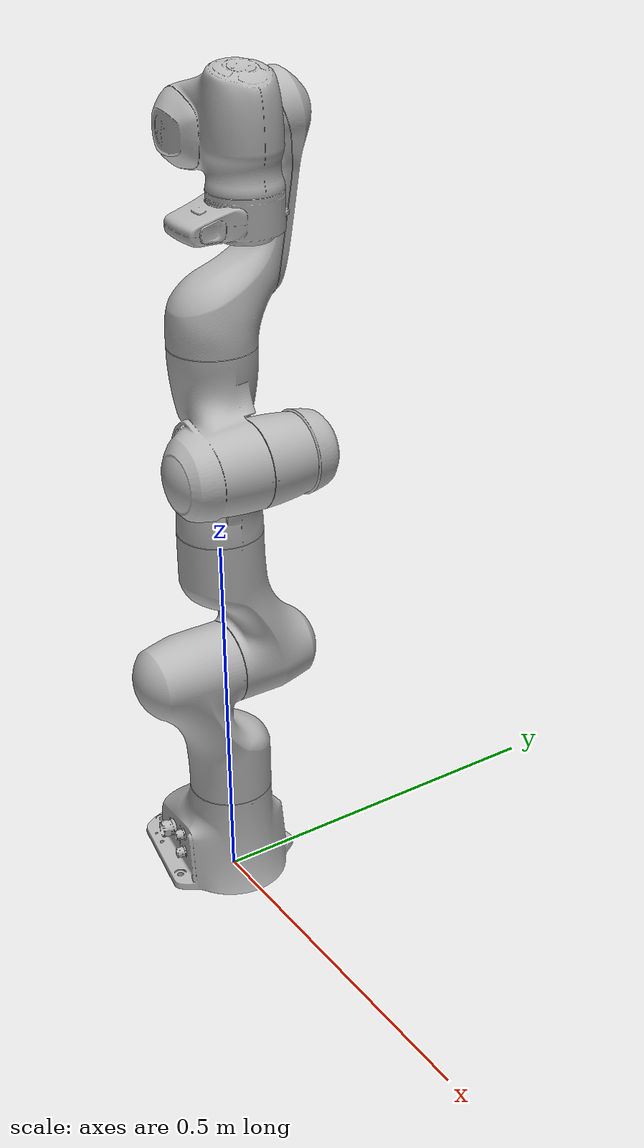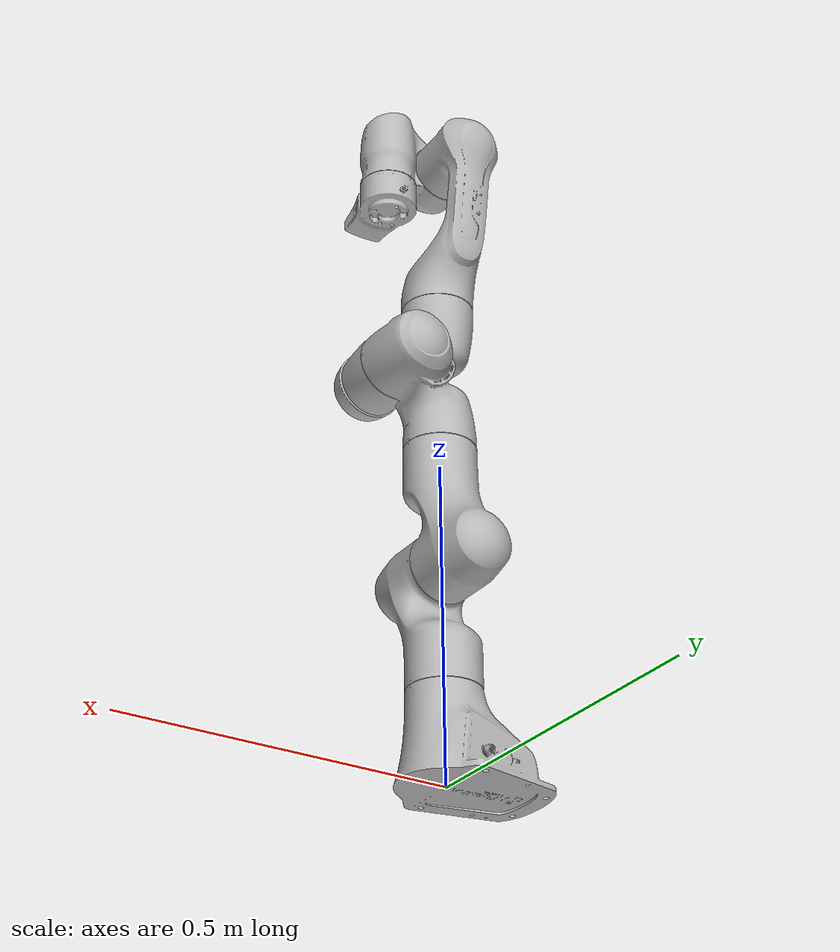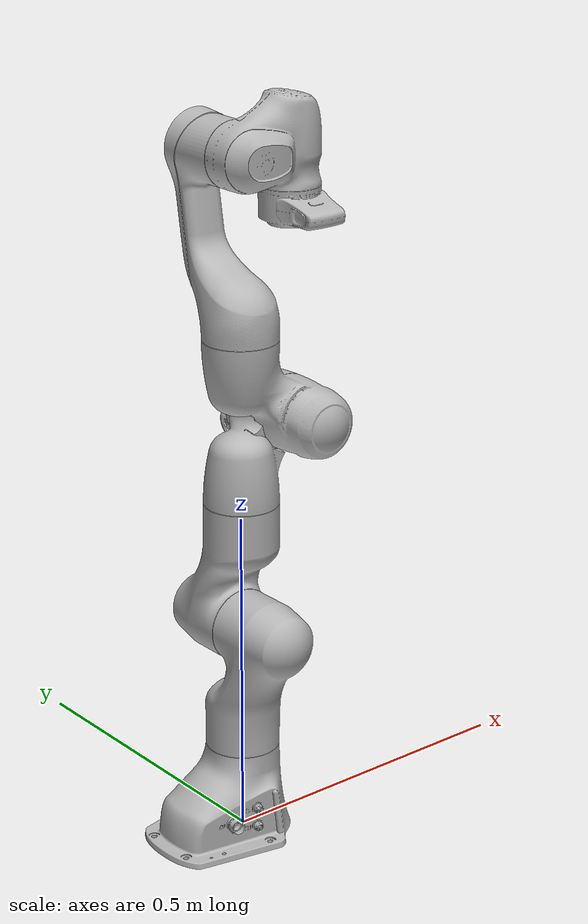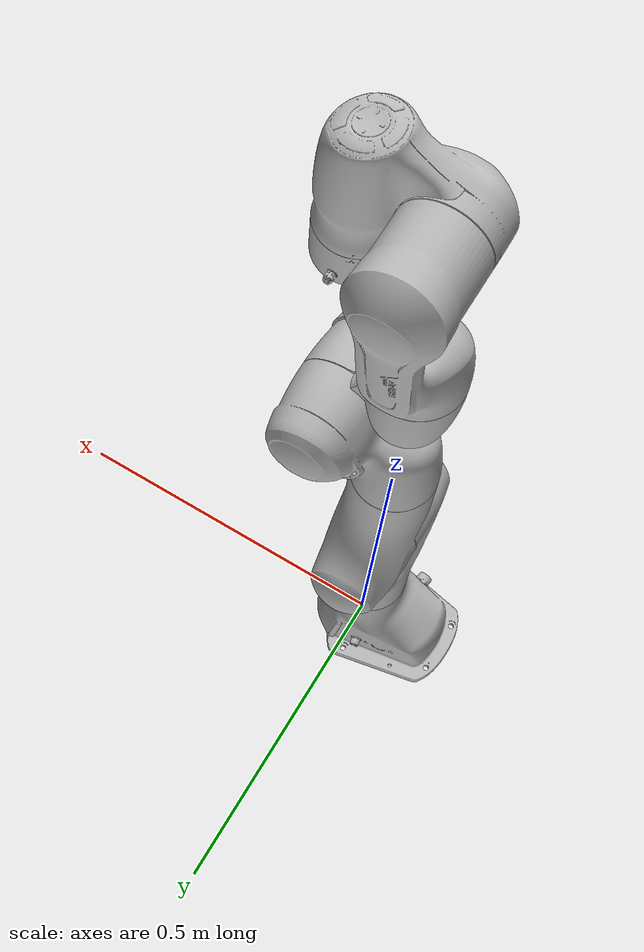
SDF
<?xml version="1.0"?>
<!-- Adapted from https://app.ignitionrobotics.org/openrobotics/fuel/models/panda with ignition position controller model -->
<sdf version="1.7">
  <model name="panda">
    <!-- Arm Links -->
    <link name="panda_link0">
      <visual name="panda_link0_visual">
        <geometry>
          <mesh>
            <uri>panda/meshes/visual/link0.obj</uri>
          </mesh>
        </geometry>
      </visual>
      <collision name="panda_link0_collision">
        <geometry>
          <mesh>
            <uri>panda/meshes/collision/link0.stl</uri>
          </mesh>
        </geometry>
        <surface>
          <friction>
            <ode>
              <mu>1.05</mu>
              <mu2>1.05</mu2>
            </ode>
          </friction>
        </surface>
      </collision>
      <inertial>
        <pose>-0.025566 -2.87883e-05 0.057332 0 0 0</pose>
        <mass>2.814271300104062</mass>
        <inertia>
          <ixx>0.0075390636364814695</ixx>
          <iyy>0.010508017427382959</iyy>
          <izz>0.009864933638708275</izz>
          <ixy>-1.5053124574783335e-05</ixy>
          <ixz>-0.0012144328835738973</ixz>
          <iyz>1.0434803501032979e-05</iyz>
        </inertia>
      </inertial>
    </link>
    <link name="panda_link1">
      <pose relative_to="panda_link0">0 0 0.333 0 0 0</pose>
      <visual name="panda_link1_visual">
        <geometry>
          <mesh>
            <uri>panda/meshes/visual/link1.obj</uri>
          </mesh>
        </geometry>
      </visual>
      <collision name="panda_link1_collision">
        <geometry>
          <mesh>
            <uri>panda/meshes/collision/link1.stl</uri>
          </mesh>
        </geometry>
        <surface>
          <friction>
            <ode>
              <mu>1.05</mu>
              <mu2>1.05</mu2>
            </ode>
          </friction>
        </surface>
      </collision>
      <inertial>
        <pose>-3.72212e-09 -0.0324958 -0.0675818 0 0 0</pose>
        <mass>2.6433170427227215</mass>
        <inertia>
          <ixx>0.017405076982879724</ixx>
          <iyy>0.015352077935781732</iyy>
          <izz>0.005987891663073857</izz>
          <ixy>-8.687986369621078e-09</ixy>
          <ixz>-1.6277819062920423e-08</ixz>
          <iyz>0.004510855959102245</iyz>
        </inertia>
      </inertial>
    </link>
    <link name="panda_link2">
      <pose relative_to="panda_link1">0 0 0 -1.570796326794897 0 0</pose>
      <visual name="panda_link2_visual">
        <geometry>
          <mesh>
            <uri>panda/meshes/visual/link2.obj</uri>
          </mesh>
        </geometry>
      </visual>
      <collision name="panda_link2_collision">
        <geometry>
          <mesh>
            <uri>panda/meshes/collision/link2.stl</uri>
          </mesh>
        </geometry>
        <surface>
          <friction>
            <ode>
              <mu>1.05</mu>
              <mu2>1.05</mu2>
            </ode>
          </friction>
        </surface>
      </collision>
      <inertial>
        <pose>3.17833e-07 -0.06861 0.0322285 0 0 0</pose>
        <mass>2.6652755331661186</mass>
        <inertia>
          <ixx>0.01778694005635383</ixx>
          <iyy>0.006044133867952844</iyy>
          <izz>0.01571095500455695</izz>
          <ixy>8.70635625879119e-08</ixy>
          <ixz>3.752072058394008e-08</ixz>
          <iyz>-0.004599490295490376</iyz>
        </inertia>
      </inertial>
    </link>
    <link name="panda_link3">
      <pose relative_to="panda_link2">0 -0.316 0 1.570796326794897 0 0</pose>
      <visual name="panda_link3_visual">
        <geometry>
          <mesh>
            <uri>panda/meshes/visual/link3.obj</uri>
          </mesh>
        </geometry>
      </visual>
      <collision name="panda_link3_collision">
        <geometry>
          <mesh>
            <uri>panda/meshes/collision/link3.stl</uri>
          </mesh>
        </geometry>
        <surface>
          <friction>
            <ode>
              <mu>1.05</mu>
              <mu2>1.05</mu2>
            </ode>
          </friction>
        </surface>
      </collision>
      <inertial>
        <pose>0.0469893 0.0316374 -0.031704 0 0 0</pose>
        <mass>2.3293714829045733</mass>
        <inertia>
          <ixx>0.0075496764161139766</ixx>
          <iyy>0.009680676080191398</iyy>
          <izz>0.007944557422008086</izz>
          <ixy>-0.0024320464513492225</ixy>
          <ixz>-0.003250815048103007</ixz>
          <iyz>-0.0021316282421730694</iyz>
        </inertia>
      </inertial>
    </link>
    <link name="panda_link4">
      <pose relative_to="panda_link3">0.0825 0 0 1.570796326794897 0 0</pose>
      <visual name="panda_link4_visual">
        <geometry>
          <mesh>
            <uri>panda/meshes/visual/link4.obj</uri>
          </mesh>
        </geometry>
      </visual>
      <collision name="panda_link4_collision">
        <geometry>
          <mesh>
            <uri>panda/meshes/collision/link4.stl</uri>
          </mesh>
        </geometry>
        <surface>
          <friction>
            <ode>
              <mu>1.05</mu>
              <mu2>1.05</mu2>
            </ode>
          </friction>
        </surface>
      </collision>
      <inertial>
        <pose>-0.0360505 0.0337069 0.0319019 0 0 0</pose>
        <mass>2.3104763646281508</mass>
        <inertia>
          <ixx>0.007764568814864828</ixx>
          <iyy>0.008015776929980149</iyy>
          <izz>0.009955882308071066</izz>
          <ixy>0.003371475204045935</ixy>
          <ixz>-0.002343621113168248</ixz>
          <iyz>0.0022917526161470624</iyz>
        </inertia>
      </inertial>
    </link>
    <link name="panda_link5">
      <pose relative_to="panda_link4">-0.0825 0.384 0 -1.570796326794897 0 0</pose>
      <visual name="panda_link5_visual">
        <geometry>
          <mesh>
            <uri>panda/meshes/visual/link5.obj</uri>
          </mesh>
        </geometry>
      </visual>
      <collision name="panda_link5_collision">
        <geometry>
          <mesh>
            <uri>panda/meshes/collision/link5.stl</uri>
          </mesh>
        </geometry>
        <surface>
          <friction>
            <ode>
              <mu>1.05</mu>
              <mu2>1.05</mu2>
            </ode>
          </friction>
        </surface>
      </collision>
      <inertial>
        <pose>-6.12525e-06 0.0610427 -0.104176 0 0 0</pose>
        <mass>2.6226426154892004</mass>
        <inertia>
          <ixx>0.029070538014399377</ixx>
          <iyy>0.027638529986528795</iyy>
          <izz>0.004251111234400737</izz>
          <ixy>6.208738268725568e-07</ixy>
          <ixz>-1.0059151925023392e-05</ixz>
          <iyz>-0.007424306477850814</iyz>
        </inertia>
      </inertial>
    </link>
    <link name="panda_link6">
      <pose relative_to="panda_link5">0 0 0 1.570796326794897 0 0.0</pose>
      <visual name="panda_link6_visual">
        <geometry>
          <mesh>
            <uri>panda/meshes/visual/link6.obj</uri>
          </mesh>
        </geometry>
      </visual>
      <collision name="panda_link6_collision">
        <geometry>
          <mesh>
            <uri>panda/meshes/collision/link6.stl</uri>
          </mesh>
        </geometry>
        <surface>
          <friction>
            <ode>
              <mu>1.05</mu>
              <mu2>1.05</mu2>
            </ode>
          </friction>
        </surface>
      </collision>
      <inertial>
        <pose>0.051051 0.00910797 0.0106343 0 0 0</pose>
        <mass>1.5025804886626795</mass>
        <inertia>
          <ixx>0.002940555801469018</ixx>
          <iyy>0.00392105201248677</iyy>
          <izz>0.0054115603870960195</izz>
          <ixy>-0.00042391108351381507</ixy>
          <ixz>0.000610007735338717</ixz>
          <iyz>0.00012647545430836214</iyz>
        </inertia>
      </inertial>
    </link>
    <link name="panda_link7">
      <pose relative_to="panda_link6">0.088 0 0 1.570796326794897 -0.8 0.0</pose>
      <visual name="panda_link7_visual">
        <geometry>
          <mesh>
            <uri>panda/meshes/visual/link7.obj</uri>
          </mesh>
        </geometry>
      </visual>
      <collision name="panda_link7_collision">
        <geometry>
          <mesh>
            <uri>panda/meshes/collision/link7.stl</uri>
          </mesh>
        </geometry>
        <surface>
          <friction>
            <ode>
              <mu>1.05</mu>
              <mu2>1.05</mu2>
            </ode>
          </friction>
        </surface>
      </collision>
      <inertial>
        <pose>0.0109695 0.0107965 0.0650412 0 0 0</pose>
        <mass>0.5237668134788256</mass>
        <inertia>
          <ixx>0.0008621467959726535</ixx>
          <iyy>0.0008613100184801048</iyy>
          <izz>0.0006961139396618219</izz>
          <ixy>-0.00011871071570425467</ixy>
          <ixz>3.866602604509339e-05</ixz>
          <iyz>-9.057841649422724e-05</iyz>
        </inertia>
      </inertial>
    </link>
    <!-- Arm Joints -->
    <joint name="panda_joint1" type="revolute">
      <pose relative_to="panda_link0">0 0 0.333 0 0 0</pose>
      <parent>panda_link0</parent>
      <child>panda_link1</child>
      <axis>
        <xyz>0 0 1</xyz>
        <limit>
          <effort>87</effort>
          <lower>-2.897246558310587</lower>
          <upper>2.897246558310587</upper>
          <velocity>2.617993877991494</velocity>
        </limit>
        <dynamics>
          <spring_reference>0</spring_reference>
          <spring_stiffness>0</spring_stiffness>
          <damping>21.75</damping>
          <friction>3.48</friction>
        </dynamics>
      </axis>
    </joint>
    <joint name="panda_joint2" type="revolute">
      <pose relative_to="panda_link1">0 0 0 -1.570796326794897 0 0</pose>
      <parent>panda_link1</parent>
      <child>panda_link2</child>
      <axis>
        <xyz>0 0 1</xyz>
        <limit>
          <effort>87</effort>
          <lower>-1.762782544514273</lower>
          <upper>1.762782544514273</upper>
          <velocity>2.617993877991494</velocity>
        </limit>
        <dynamics>
          <spring_reference>0</spring_reference>
          <spring_stiffness>0</spring_stiffness>
          <damping>21.75</damping>
          <friction>3.48</friction>
        </dynamics>
      </axis>
    </joint>
    <joint name="panda_joint3" type="revolute">
      <pose relative_to="panda_link2">0 -0.316 0 1.570796326794897 0 0</pose>
      <parent>panda_link2</parent>
      <child>panda_link3</child>
      <axis>
        <xyz>0 0 1</xyz>
        <limit>
          <effort>87</effort>
          <lower>-2.897246558310587</lower>
          <upper>2.897246558310587</upper>
          <velocity>2.617993877991494</velocity>
        </limit>
        <dynamics>
          <spring_reference>0</spring_reference>
          <spring_stiffness>0</spring_stiffness>
          <damping>21.75</damping>
          <friction>3.48</friction>
        </dynamics>
      </axis>
    </joint>
    <joint name="panda_joint4" type="revolute">
      <pose relative_to="panda_link3">0.0825 0 0 1.570796326794897 0 0</pose>
      <parent>panda_link3</parent>
      <child>panda_link4</child>
      <axis>
        <xyz>0 0 1</xyz>
        <limit>
          <effort>87</effort>
          <lower>-3.07177948351002</lower>
          <upper>-0.06981317007977318</upper>
          <velocity>2.617993877991494</velocity>
        </limit>
        <dynamics>
          <spring_reference>0</spring_reference>
          <spring_stiffness>0</spring_stiffness>
          <damping>21.75</damping>
          <friction>3.48</friction>
        </dynamics>
      </axis>
    </joint>
    <joint name="panda_joint5" type="revolute">
      <pose relative_to="panda_link4">-0.0825 0.384 0 -1.570796326794897 0 0</pose>
      <parent>panda_link4</parent>
      <child>panda_link5</child>
      <axis>
        <xyz>0 0 1</xyz>
        <limit>
          <effort>12</effort>
          <lower>-2.897246558310587</lower>
          <upper>2.897246558310587</upper>
          <velocity>3.141592653589793</velocity>
        </limit>
        <dynamics>
          <spring_reference>0</spring_reference>
          <spring_stiffness>0</spring_stiffness>
          <damping>3.0</damping>
          <friction>0.48</friction>
        </dynamics>
      </axis>
    </joint>
    <joint name="panda_joint6" type="revolute">
      <pose relative_to="panda_link5">0 0 0 1.570796326794897 0 0.0</pose>
      <parent>panda_link5</parent>
      <child>panda_link6</child>
      <axis>
        <xyz>0 0 1</xyz>
        <limit>
          <effort>12</effort>
          <lower>-0.0174532925199433</lower>
          <upper>3.752457891787809</upper>
          <velocity>3.141592653589793</velocity>
        </limit>
        <dynamics>
          <spring_reference>0</spring_reference>
          <spring_stiffness>0</spring_stiffness>
          <damping>3.0</damping>
          <friction>0.48</friction>
        </dynamics>
      </axis>
    </joint>
    <joint name="panda_joint7" type="revolute">
      <pose relative_to="panda_link6">0.088 0 0 1.570796326794897 -0.8 0.0</pose>
      <parent>panda_link6</parent>
      <child>panda_link7</child>
      <axis>
        <xyz>0 0 1</xyz>
        <limit>
          <effort>12</effort>
          <lower>-2.897246558310587</lower>
          <upper>2.897246558310587</upper>
          <velocity>3.141592653589793</velocity>
        </limit>
        <dynamics>
          <spring_reference>0</spring_reference>
          <spring_stiffness>0</spring_stiffness>
          <damping>3.0</damping>
          <friction>0.48</friction>
        </dynamics>
      </axis>
    </joint>
    <frame name="gripper_mount" attached_to="panda_link7">
      <pose>0 0 0.107 0 0 -0.7853981633974483</pose>
    </frame>

    <!-- Joint controller plugins -->
    <!-- Used values from
        https://github.com/mkrizmancic/franka_gazebo/blob/4a88ce6ca7d3d7bb87bd3fbe91e12873cc42f9b9/config/default.yaml-->
    <plugin filename="ignition-gazebo-joint-position-controller-system" name="ignition::gazebo::systems::JointPositionController">
      <joint_name>panda_joint1</joint_name>
      <p_gain>50</p_gain>
      <d_gain>20</d_gain>
      <i_gain>0</i_gain>
      <i_min>-1</i_min>
      <i_max>1</i_max>
      <cmd_min>-87</cmd_min>
      <cmd_max>87</cmd_max>
    </plugin>
    <plugin filename="ignition-gazebo-joint-position-controller-system" name="ignition::gazebo::systems::JointPositionController">
      <joint_name>panda_joint2</joint_name>
      <p_gain>10000</p_gain>
      <d_gain>500</d_gain>
      <i_gain>0</i_gain>
      <i_min>-1</i_min>
      <i_max>1</i_max>
      <cmd_min>-87</cmd_min>
      <cmd_max>87</cmd_max>
    </plugin>
    <plugin filename="ignition-gazebo-joint-position-controller-system" name="ignition::gazebo::systems::JointPositionController">
      <joint_name>panda_joint3</joint_name>
      <p_gain>100</p_gain>
      <d_gain>10</d_gain>
      <i_gain>0</i_gain>
      <i_min>-1</i_min>
      <i_max>1</i_max>
      <cmd_min>-87</cmd_min>
      <cmd_max>87</cmd_max>
    </plugin>
    <plugin filename="ignition-gazebo-joint-position-controller-system" name="ignition::gazebo::systems::JointPositionController">
      <joint_name>panda_joint4</joint_name>
      <p_gain>1000</p_gain>
      <d_gain>50</d_gain>
      <i_gain>0</i_gain>
      <i_min>-1</i_min>
      <i_max>1</i_max>
      <cmd_min>-87</cmd_min>
      <cmd_max>87</cmd_max>
    </plugin>
    <plugin filename="ignition-gazebo-joint-position-controller-system" name="ignition::gazebo::systems::JointPositionController">
      <joint_name>panda_joint5</joint_name>
      <p_gain>100</p_gain>
      <d_gain>50</d_gain>
      <i_gain>0</i_gain>
      <i_min>-1</i_min>
      <i_max>1</i_max>
      <cmd_min>-12</cmd_min>
      <cmd_max>12</cmd_max>
    </plugin>
    <plugin filename="ignition-gazebo-joint-position-controller-system" name="ignition::gazebo::systems::JointPositionController">
      <joint_name>panda_joint6</joint_name>
      <p_gain>100</p_gain>
      <d_gain>10</d_gain>
      <i_gain>0</i_gain>
      <i_min>-1</i_min>
      <i_max>1</i_max>
      <cmd_min>-12</cmd_min>
      <cmd_max>12</cmd_max>
    </plugin>
    <plugin filename="ignition-gazebo-joint-position-controller-system" name="ignition::gazebo::systems::JointPositionController">
      <joint_name>panda_joint7</joint_name>
      <p_gain>10</p_gain>
      <d_gain>0.1</d_gain>
      <i_gain>0.5</i_gain>
      <i_min>-1</i_min>
      <i_max>1</i_max>
      <cmd_min>-12</cmd_min>
      <cmd_max>12</cmd_max>
    </plugin>
  </model>
</sdf>
